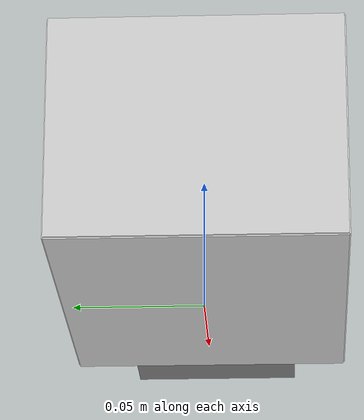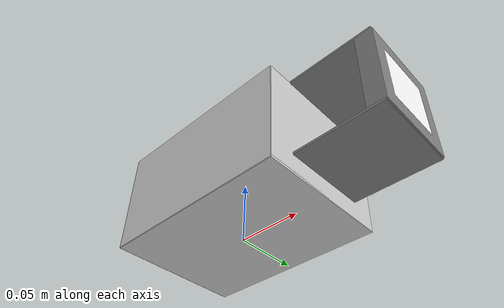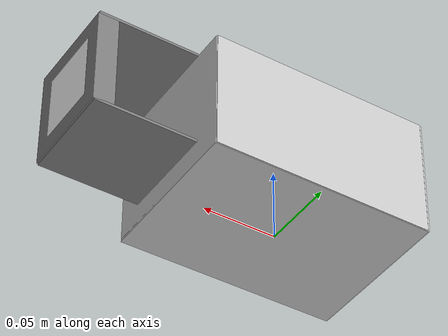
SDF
<?xml version="1.0" ?>
<sdf version="1.4">
    <model name='towel_box'>
      <link name='link'>
        <inertial>
          <pose>0.034 0 0.04 1.57 0 0</pose>
          <mass>0.3</mass>
          <inertia>
            <ixx>0.00058</ixx>
            <ixy>0</ixy>
            <ixz>0</ixz>
            <iyy>0.00058</iyy>
            <iyz>0</iyz>
            <izz>0.00019</izz>
          </inertia>
        </inertial>
        <visual name='handle_top'>
          <pose>0.11 0 0.085 0 0 0</pose>
          <geometry>
            <box>
              <size>0.068 0.068 0.002</size>
            </box>
          </geometry>
          <material>
            <!-- hsr_color/white -->
            <name>white</name>
            <ambient>1 1 1 1</ambient>
            <diffuse>0.5 0.5 0.5 1</diffuse>
            <specular>0 0 0 1</specular>
            <emissive>0 0 0 1</emissive>
            <shading>gouraud</shading>
            <receive_shadows>on</receive_shadows>
          </material>
        </visual>
        <collision name='collision_handle_top'>
          <pose>0.11 0 0.085 0 0 0</pose>
          <geometry>
            <box>
              <size>0.068 0.068 0.002</size>
            </box>
          </geometry>
          <max_contacts>10</max_contacts>
          <surface>
            <bounce>
              <restitution_coefficient>0.2</restitution_coefficient>
              <threshold>0</threshold>
            </bounce>
            <friction>
              <ode/>
            </friction>
            <contact>
              <ode>
                 <max_vel>10</max_vel>
              </ode>
            </contact>
          </surface>
        </collision>
        <visual name='handle_bottom'>
          <pose>0.11 0 0.016 0 0 0</pose>
          <geometry>
            <box>
              <size>0.068 0.068 0.002</size>
            </box>
          </geometry>
          <material>
            <!-- hsr_color/white -->
            <name>white</name>
            <ambient>1 1 1 1</ambient>
            <diffuse>0.5 0.5 0.5 1</diffuse>
            <specular>0 0 0 1</specular>
            <emissive>0 0 0 1</emissive>
            <shading>gouraud</shading>
            <receive_shadows>on</receive_shadows>
          </material>
        </visual>
        <collision name='collision_handle_bottom'>
          <pose>0.11 0 0.016 0 0 0</pose>
          <geometry>
            <box>
              <size>0.068 0.068 0.002</size>
            </box>
          </geometry>
          <max_contacts>10</max_contacts>
          <surface>
            <bounce>
              <restitution_coefficient>0.2</restitution_coefficient>
              <threshold>0</threshold>
            </bounce>
            <friction>
              <ode/>
            </friction>
            <contact>
              <ode>
                 <max_vel>10</max_vel>
              </ode>
            </contact>
          </surface>
        </collision>
        <visual name='marker_0501'>
          <pose>0.11 0 0.0861 0 0 3.1415</pose>
          <geometry>
            <box>
              <size>0.045 0.045 0.0001</size>
            </box>
          </geometry>
          <material>
            <name>Marker/0501</name>

            <ambient>1 1 1 1</ambient>  <!-- 周囲光 (真っ白) -->
            <diffuse>1 1 1 1</diffuse>  <!-- 反射光 (真っ白) -->
            <specular>0 0 0 1</specular>  <!-- 鏡面反射 (無し) -->
            <emissive>0 0 0 0</emissive>  <!-- 発光 (無し) -->

            <pbr>
              <metal>
                <albedo_map>marker/0501/textures/BchThin_Id0501_Size0036.png</albedo_map>
                <max_anisotropy>16</max_anisotropy>
                <metalness>0.0</metalness> <!-- 金属感を排除 -->
              </metal>
            </pbr>
          </material>
        </visual>
        <visual name='handle_front'>
          <pose>0.138 0 0.05 0 0 0</pose>
          <geometry>
            <box>
              <size>0.014 0.068 0.068</size>
            </box>
          </geometry>
          <material>
            <!-- hsr_color/white -->
            <name>white</name>
            <ambient>1 1 1 1</ambient>
            <diffuse>0.5 0.5 0.5 1</diffuse>
            <specular>0 0 0 1</specular>
            <emissive>0 0 0 1</emissive>
            <shading>gouraud</shading>
            <receive_shadows>on</receive_shadows>
          </material>
        </visual>
        <collision name='collision_handle_front'>
          <pose>0.138 0 0.05 0 0 0</pose>
          <geometry>
            <box>
              <size>0.014 0.068 0.068</size>
            </box>
          </geometry>
          <max_contacts>10</max_contacts>
          <surface>
            <bounce>
              <restitution_coefficient>0.2</restitution_coefficient>
              <threshold>0</threshold>
            </bounce>
            <friction>
              <ode/>
            </friction>
            <contact>
              <ode>
                 <max_vel>10</max_vel>
              </ode>
            </contact>
          </surface>
        </collision>
        <visual name='marker_0514'>
          <pose>0.145 0 0.05 0 0 0</pose>
          <geometry>
            <box>
              <size>0.0001 0.045 0.045</size>
            </box>
          </geometry>
          <material>
            <name>Marker/0514</name>

            <ambient>1 1 1 1</ambient>  <!-- 周囲光 (真っ白) -->
            <diffuse>1 1 1 1</diffuse>  <!-- 反射光 (真っ白) -->
            <specular>0 0 0 1</specular>  <!-- 鏡面反射 (無し) -->
            <emissive>0 0 0 0</emissive>  <!-- 発光 (無し) -->

            <pbr>
              <metal>
                <albedo_map>marker/0514/textures/BchThin_Id0514_Size0036.png</albedo_map>
                <max_anisotropy>16</max_anisotropy>
                <metalness>0.0</metalness> <!-- 金属感を排除 -->
              </metal>
            </pbr>
          </material>
        </visual>
        <visual name='box_front'>
          <pose>0.075 0 0.043 0 0 0</pose>
          <geometry>
            <box>
              <size>0.001 0.108 0.085</size>
            </box>
          </geometry>
          <material>
            <!-- hsr_color/white_transparency1 -->
            <name>white_transparency1</name>
            <ambient>1 1 1 1</ambient>
            <diffuse>0.8 0.8 0.8 1</diffuse>
            <specular>0.9 0.9 0.9 1</specular>
            <scene_blend>alpha_blend</scene_blend>
            <depth_write>off</depth_write>
          </material>
        </visual>
        <collision name='collision_box_front'>
          <pose>0.075 0 0.043 0 0 0</pose>
          <geometry>
            <box>
              <size>0.001 0.108 0.085</size>
            </box>
          </geometry>
          <max_contacts>10</max_contacts>
          <surface>
            <bounce>
              <restitution_coefficient>0.2</restitution_coefficient>
              <threshold>0</threshold>
            </bounce>
            <friction>
              <ode/>
            </friction>
            <contact>
              <ode>
                 <max_vel>10</max_vel>
              </ode>
            </contact>
          </surface>
        </collision>
        <visual name='box_back'>
          <pose>-0.076 0 0.043 0 0 0</pose>
          <geometry>
            <box>
              <size>0.001 0.108 0.085</size>
            </box>
          </geometry>
          <material>
            <!-- hsr_color/white_transparency1 -->
            <name>white_transparency1</name>
            <ambient>1 1 1 1</ambient>
            <diffuse>0.8 0.8 0.8 1</diffuse>
            <specular>0.9 0.9 0.9 1</specular>
            <scene_blend>alpha_blend</scene_blend>
            <depth_write>off</depth_write>
          </material>
        </visual>
        <collision name='collision_box_back'>
          <pose>-0.076 0 0.043 0 0 0</pose>
          <geometry>
            <box>
              <size>0.001 0.108 0.085</size>
            </box>
          </geometry>
          <max_contacts>10</max_contacts>
          <surface>
            <bounce>
              <restitution_coefficient>0.2</restitution_coefficient>
              <threshold>0</threshold>
            </bounce>
            <friction>
              <ode/>
            </friction>
            <contact>
              <ode>
                 <max_vel>10</max_vel>
              </ode>
            </contact>
          </surface>
        </collision>
        <visual name='box_right'>
          <pose>0 0.054 0.043 0 0 0</pose>
          <geometry>
            <box>
              <size>0.150 0.001 0.085</size>
            </box>
          </geometry>
          <material>
            <!-- hsr_color/white_transparency1 -->
            <name>white_transparency1</name>
            <ambient>1 1 1 1</ambient>
            <diffuse>0.8 0.8 0.8 1</diffuse>
            <specular>0.9 0.9 0.9 1</specular>
            <scene_blend>alpha_blend</scene_blend>
            <depth_write>off</depth_write>
          </material>
        </visual>
        <collision name='collision_box_right'>
          <pose>0 0.054 0.043 0 0 0</pose>
          <geometry>
            <box>
              <size>0.150 0.001 0.085</size>
            </box>
          </geometry>
          <max_contacts>10</max_contacts>
          <surface>
            <bounce>
              <restitution_coefficient>0.2</restitution_coefficient>
              <threshold>0</threshold>
            </bounce>
            <friction>
              <ode/>
            </friction>
            <contact>
              <ode>
                 <max_vel>10</max_vel>
              </ode>
            </contact>
          </surface>
        </collision>
        <visual name='box_left'>
          <pose>0 -0.054 0.043 0 0 0</pose>
          <geometry>
            <box>
              <size>0.150 0.001 0.085</size>
            </box>
          </geometry>
          <material>
            <!-- hsr_color/white_transparency1 -->
            <name>white_transparency1</name>
            <ambient>1 1 1 1</ambient>
            <diffuse>0.8 0.8 0.8 1</diffuse>
            <specular>0.9 0.9 0.9 1</specular>
            <scene_blend>alpha_blend</scene_blend>
            <depth_write>off</depth_write>
          </material>
        </visual>
        <collision name='collision_box_left'>
          <pose>0 -0.054 0.043 0 0 0</pose>
          <geometry>
            <box>
              <size>0.150 0.001 0.085</size>
            </box>
          </geometry>
          <max_contacts>10</max_contacts>
          <surface>
            <bounce>
              <restitution_coefficient>0.2</restitution_coefficient>
              <threshold>0</threshold>
            </bounce>
            <friction>
              <ode/>
            </friction>
            <contact>
              <ode>
                 <max_vel>10</max_vel>
              </ode>
            </contact>
          </surface>
        </collision>
        <visual name='box_bottom'>
          <pose>0 0 0.001 0 0 0</pose>
          <geometry>
            <box>
              <size>0.151 0.108 0.002</size>
            </box>
          </geometry>
          <material>
            <!-- hsr_color/white_transparency1 -->
            <name>white_transparency1</name>
            <ambient>1 1 1 1</ambient>
            <diffuse>0.8 0.8 0.8 1</diffuse>
            <specular>0.9 0.9 0.9 1</specular>
            <scene_blend>alpha_blend</scene_blend>
            <depth_write>off</depth_write>
          </material>
        </visual>
        <collision name='collision_box_bottom'>
          <pose>0 0 0.001 0 0 0</pose>
          <geometry>
            <box>
              <size>0.151 0.108 0.002</size>
            </box>
          </geometry>
          <max_contacts>10</max_contacts>
          <surface>
            <bounce>
              <restitution_coefficient>0.2</restitution_coefficient>
              <threshold>0</threshold>
            </bounce>
            <friction>
              <ode/>
            </friction>
            <contact>
              <ode>
                 <max_vel>10</max_vel>
              </ode>
            </contact>
          </surface>
        </collision>
        <velocity_decay>
          <linear>0</linear>
          <angular>0</angular>
        </velocity_decay>
        <self_collide>0</self_collide>
        <kinematic>0</kinematic>
        <gravity>1</gravity>
      </link>
      <static>0</static>
    </model>
</sdf>
